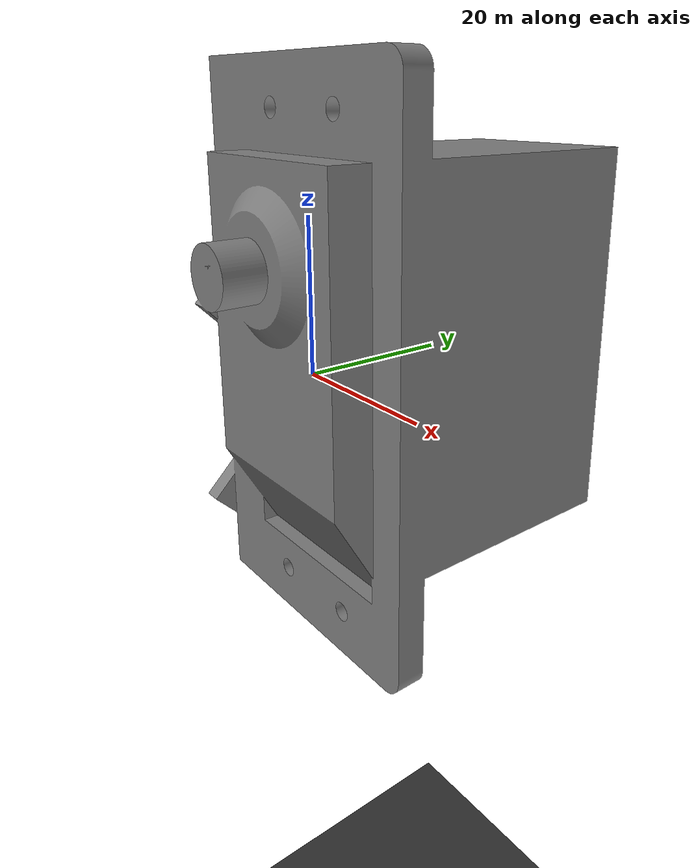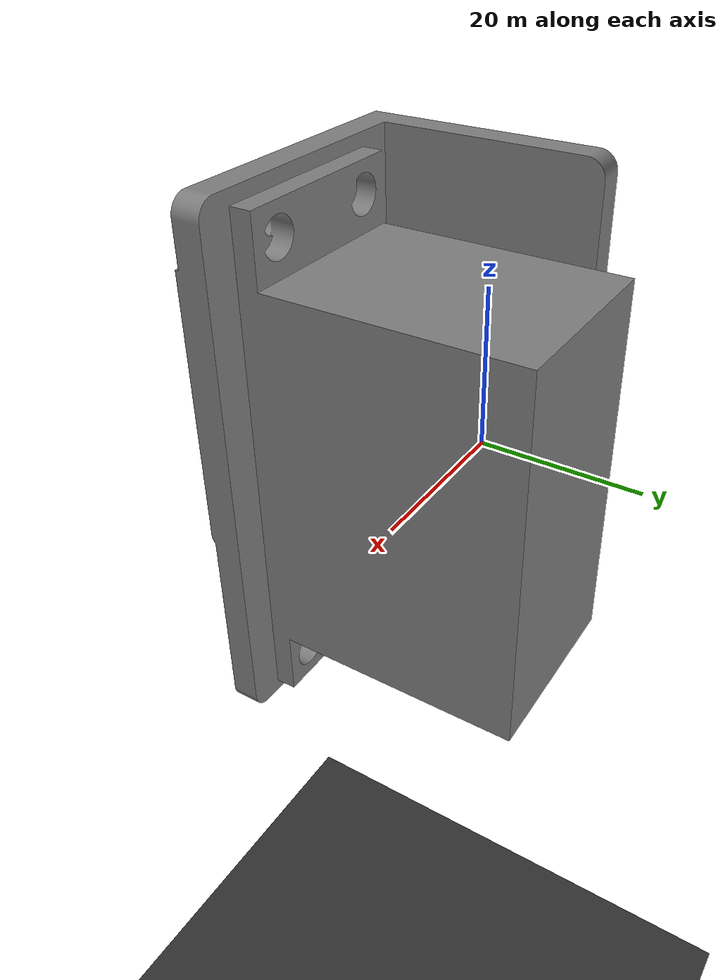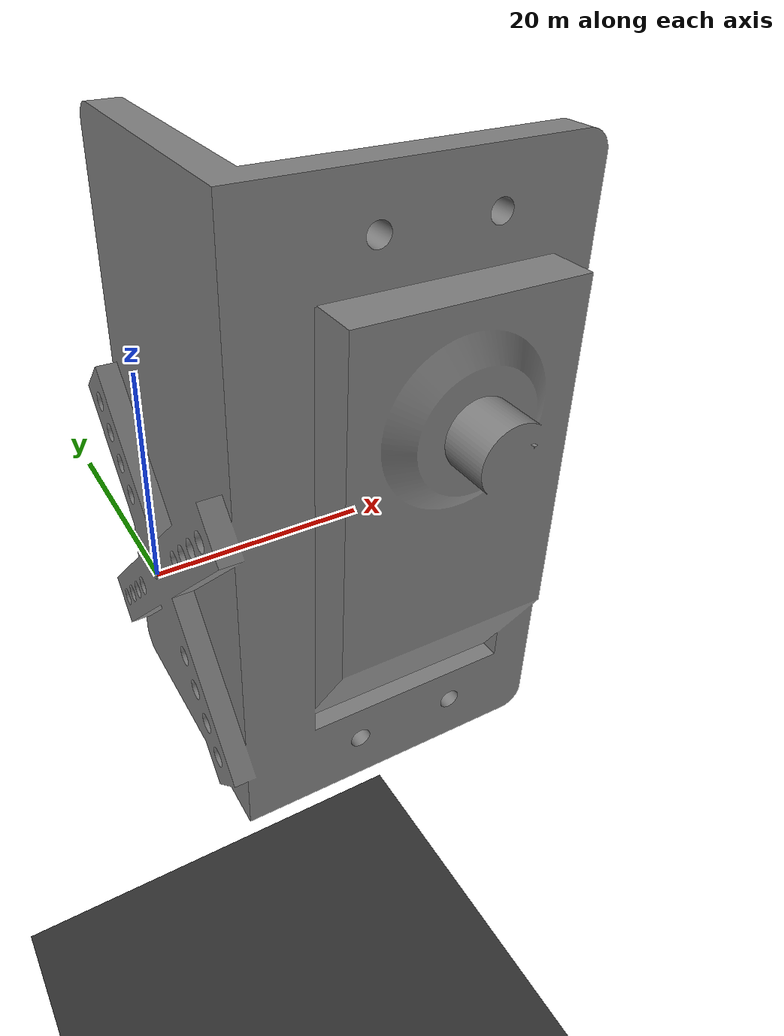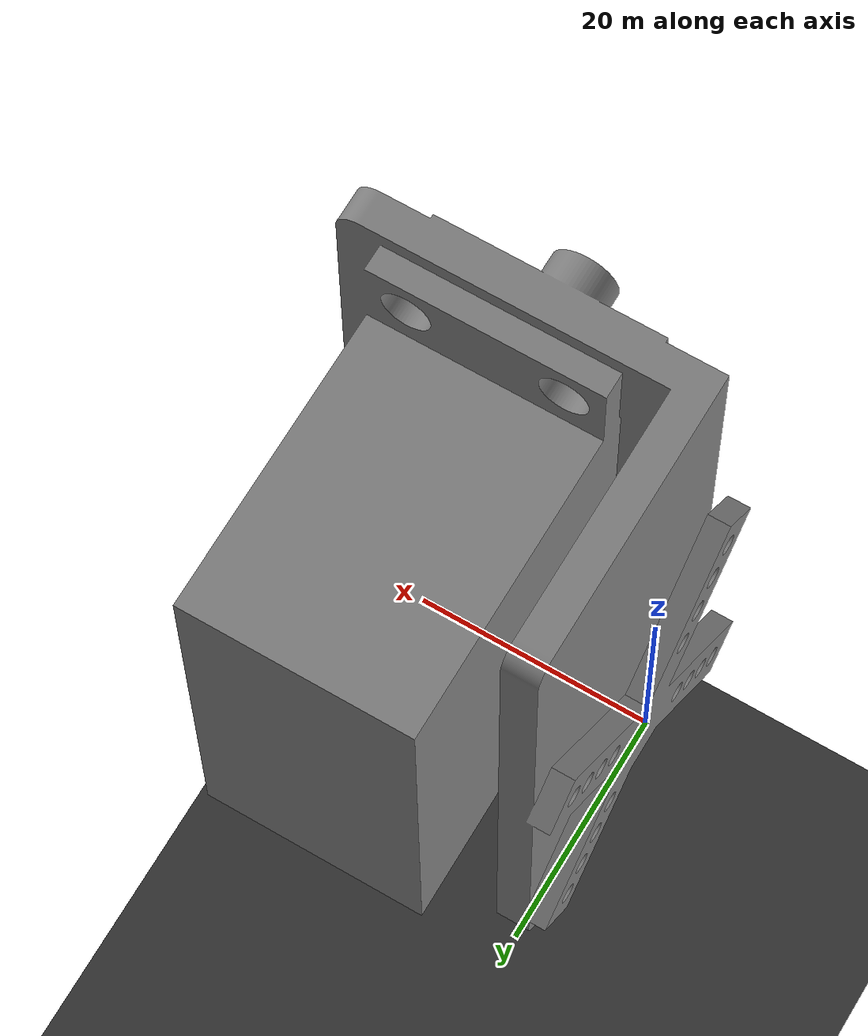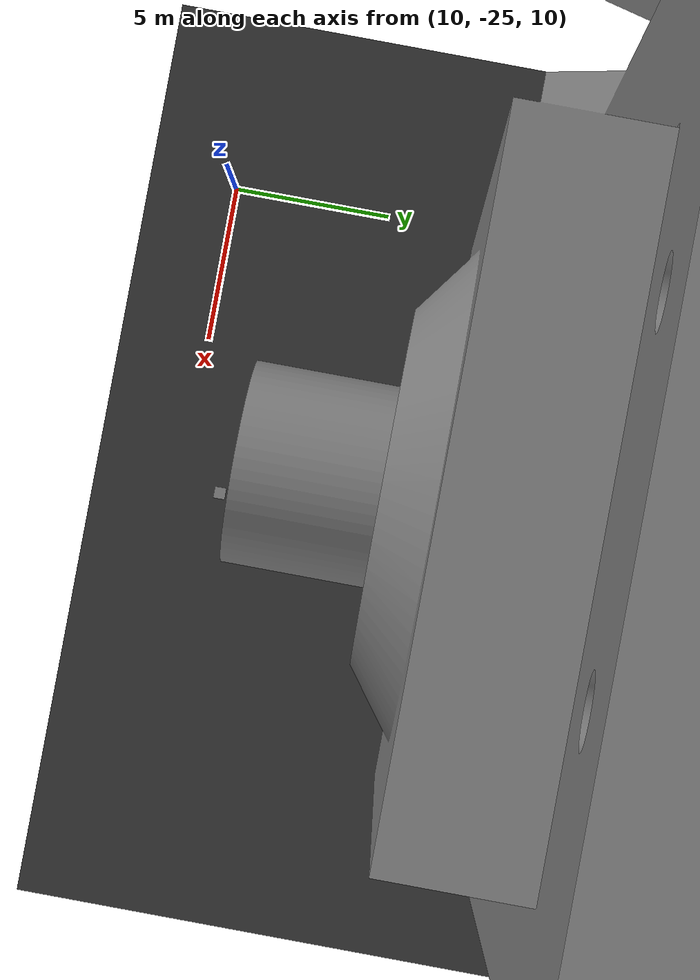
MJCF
<mujoco model="example">
    <compiler angle="radian" meshdir="meshes" coordinate="local" inertiafromgeom="true" settotalmass="14"/>
    <default>
        <joint armature=".1" damping=".01" limited="false" solimplimit="0 .8 .03" solreflimit=".02 1" stiffness="8"/>
        <geom conaffinity="0" condim="3" contype="1" friction=".4 .1 .1" solimp="0.0 0.8 0.01"
              solref="0.02 1"/>
        <motor ctrllimited="true" ctrlrange="-1 1"/>
    </default>
    <size nstack="300000" nuser_geom="1"/>
    <option gravity="0 0 -9.81" timestep="0.01"/>

    <asset>
        <mesh file="base.STL"/>
        <mesh file="middle.STL"/>
        <mesh file="top.STL"/>
        <material name="floor_mat" specular="0" shininess="0.5" reflectance="0" rgba="0.2 0.2 0.2 1"/>

    </asset>

    <worldbody>
        <geom name="floor0" pos="-0 0 -100" size="200 200 100" type="plane" condim="3" material="floor_mat"/>

        <light directional="true" pos="-0.5 0.5 3" dir="0 0 -1"/>

        <body name="base" pos="0 0 0">
            <geom name="link0" type="mesh" mesh="base" pos="0 0 0"/>
            <inertial pos="0 0 0" mass="1" diaginertia="0.3 0.3 0.3"/>

            <body name="middle" pos="0 0 0">
                <joint name="joint2" damping="0.5" axis="1 0 0" pos="0 0 0" range="1.57 4.71" type="hinge"/>-->

                <geom name="link1" type="mesh" mesh="middle" pos="0 0 0" euler="0 0 0"/>
                <inertial pos="0 0 0" mass="1" diaginertia="0.3 0.3 0.3"/>

                <body name="top" pos="20 -23 20">
                    <joint name="joint3" axis="0 1 0" damping="0.5" pos="0 0 0" range="1.57 4.71"
                           type="hinge"/>

                    <geom name="link2" type="mesh" mesh="top" pos="0 0 0" euler="0 0 0"/>
                    <inertial pos="0 0 0" mass="1" diaginertia="0.3 0.3 0.3"/>

                </body>

            </body>
        </body>
    </worldbody>

    <actuator>
        <motor gear="5000" name="joint2" joint="joint2"/>
    </actuator>

</mujoco>
